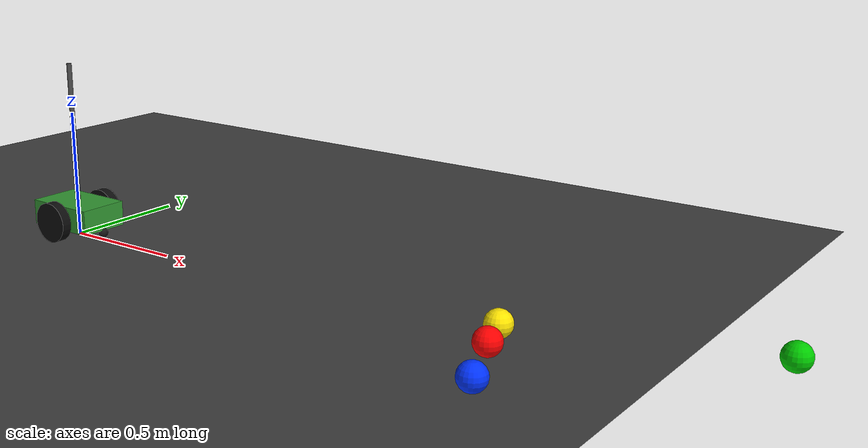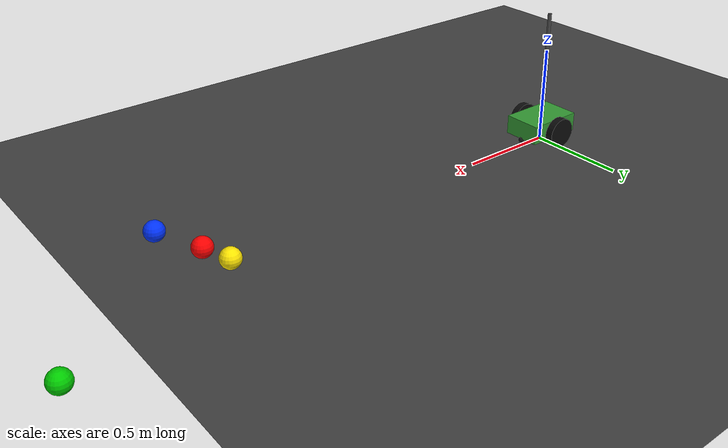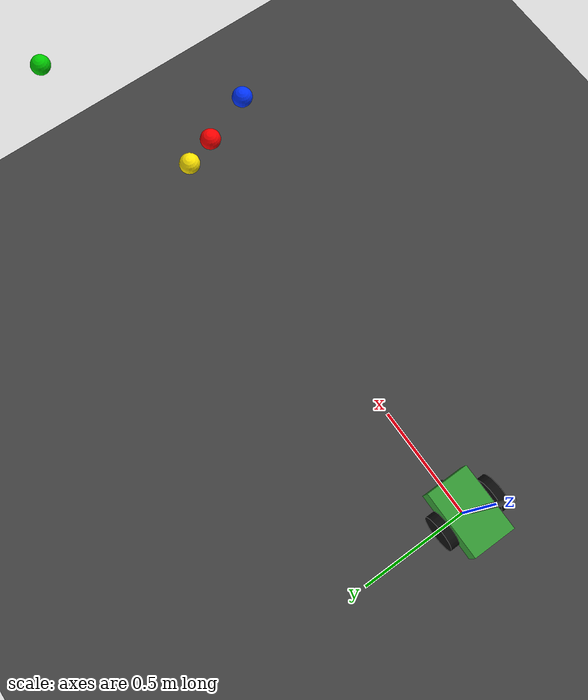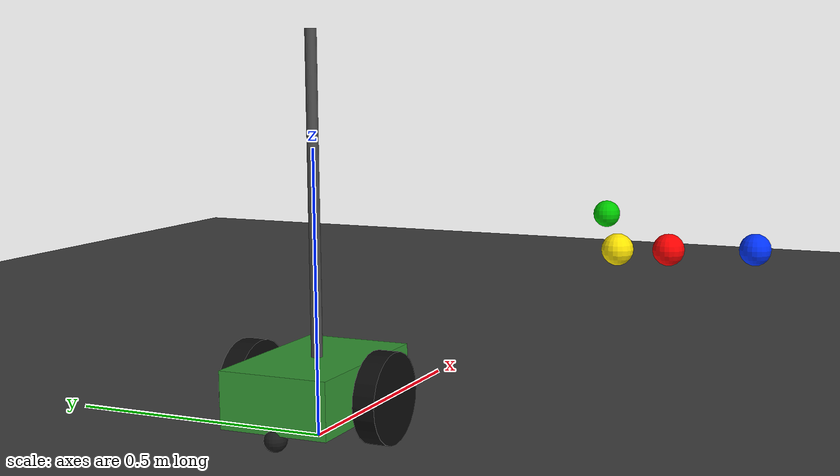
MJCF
<mujoco model="Robot_and_4_balls">
  <option gravity="0 0 -9.81" timestep="0.002"/>

  <asset>
    <texture type="skybox" builtin="gradient" rgb1="0.3 0.5 0.7" rgb2="0 0 0" width="512" height="512"/>
    <texture name="grid" type="2d" builtin="checker" rgb1="0.2 0.2 0.2" rgb2="0.3 0.3 0.3" width="300" height="300"/>
    <material name="grid" texture="grid" texrepeat="5 5" reflectance="0.2"/>
  </asset>

  <worldbody>
    <light pos="0 0 3" dir="0 0 -1" diffuse="1 1 1"/>

    <geom name="floor" type="plane" size="2.5 2.5 1" material="grid" friction="0.6 0.005 0.001"/>

    <body name="ball_blue" pos="2.1 -0.35 0.05">
      <freejoint/>
      <geom type="sphere" size="0.05" rgba="0 0.2 1 1" mass="0.05" friction="0.6 0.005 0.001"/>
    </body>

    <body name="ball_red" pos="2.0 -0.10 0.05">
      <freejoint/>
      <geom type="sphere" size="0.05" rgba="1 0 0 1" mass="0.05" friction="0.6 0.005 0.001"/>
    </body>

    <body name="ball_yellow" pos="1.95 0.05 0.05">
      <freejoint/>
      <geom type="sphere" size="0.05" rgba="1 0.9 0 1" mass="0.05" friction="0.6 0.005 0.001"/>
    </body>

    <body name="ball_green" pos="2.8 0.35 0.05">
      <freejoint/>
      <geom type="sphere" size="0.05" rgba="0 0.8 0 1" mass="0.05" friction="0.6 0.005 0.001"/>
    </body>

    <!-- робот -->
    <body name="chassis" pos="0 0 0.09">
      <freejoint/>

      <site name="chassis_imu" pos="0 0 0" size="0.01"/>

      <geom name="chassis_box" type="box" size="0.15 0.10 0.05" mass="5" rgba="0.2 0.6 0.2 1"/>

      <geom name="camera_mast" type="cylinder" size="0.01 0.28" pos="0 0 0.33" mass="0.3" rgba="0.3 0.3 0.3 1"/>
      <camera name="front_cam" pos="0 0 0.61" xyaxes="0 -1 0 0.2588 0 0.9659"/>

      <geom name="skid_front" type="sphere" size="0.02" pos="0.14 0 -0.06" mass="0.05" friction="0.1 0.005 0.0001" rgba="0.1 0.1 0.1 1"/>
      <geom name="skid_back" type="sphere" size="0.02" pos="-0.14 0 -0.06" mass="0.05" friction="0.1 0.005 0.0001" rgba="0.1 0.1 0.1 1"/>

      <body name="wheel_left" pos="0 0.13 -0.01">
        <joint name="wheel_left_joint" type="hinge" axis="0 1 0" damping="0.05" armature="0.01"/>
        <geom name="wheel_left_geom" type="cylinder" size="0.08 0.02" quat="0.707107 0.707107 0 0"
              mass="0.8" friction="1.2 0.01 0.0001" rgba="0.05 0.05 0.05 1"/>
      </body>

      <body name="wheel_right" pos="0 -0.13 -0.01">
        <joint name="wheel_right_joint" type="hinge" axis="0 1 0" damping="0.05" armature="0.01"/>
        <geom name="wheel_right_geom" type="cylinder" size="0.08 0.02" quat="0.707107 0.707107 0 0"
              mass="0.8" friction="1.2 0.01 0.0001" rgba="0.05 0.05 0.05 1"/>
      </body>
    </body>

  </worldbody>

  <sensor>
    <gyro name="chassis_gyro" site="chassis_imu"/>
  </sensor>

  <actuator>
    <velocity name="left_wheel" joint="wheel_left_joint" kv="1" ctrlrange="-20 20"/>
    <velocity name="right_wheel" joint="wheel_right_joint" kv="1" ctrlrange="-20 20"/>
  </actuator>

</mujoco>
